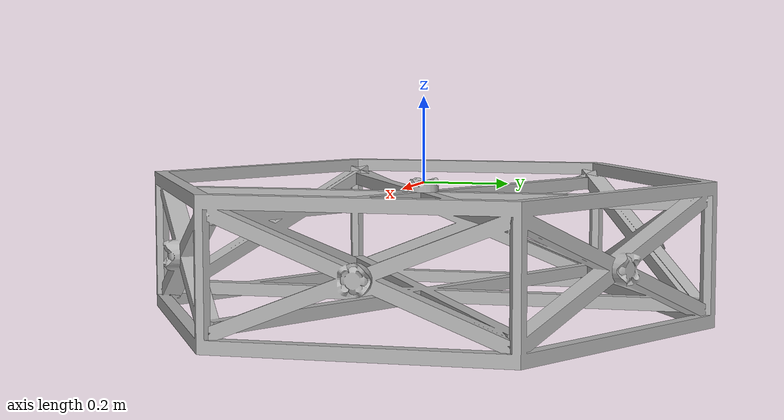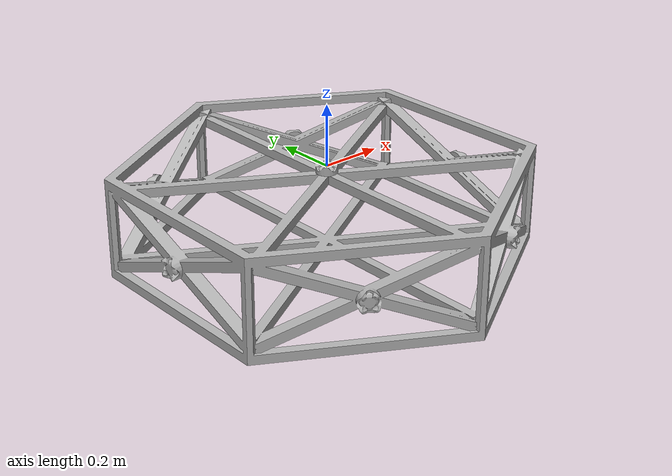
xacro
<?xml version="1.0" ?>
<robot name="srs_modules" xmlns:xacro="http://www.ros.org/wiki/xacro">

<xacro:include filename="$(find srs_modules_description)/urdf/materials.xacro" />
<xacro:include filename="$(find srs_modules_description)/urdf/srs_modules.trans" />
<xacro:include filename="$(find srs_modules_description)/urdf/srs_modules.gazebo" />
<link name="base_link">
  <inertial>
    <origin xyz="1.4261363804378048e-07 1.044383743640896e-12 -0.15064993174648186" rpy="0 0 0"/>
    <mass value="1.0"/>
    <inertia ixx="0.0" iyy="0.0" izz="0.0" ixy="0.0" iyz="0.0" ixz="0"/>
  </inertial>
  <visual>
    <origin xyz="0 0 0" rpy="0 0 0"/>
    <geometry>
      <mesh filename="package://srs_modules_description/meshes/base_link.stl" scale="0.001 0.001 0.001"/>
    </geometry>
    <material name="silver"/>
  </visual>
  <collision>
    <origin xyz="0 0 0" rpy="0 0 0"/>
    <geometry>
      <mesh filename="package://srs_modules_description/meshes/base_link.stl" scale="0.001 0.001 0.001"/>
    </geometry>
  </collision>
</link>

</robot>

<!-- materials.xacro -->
<robot name="srs_modules" xmlns:xacro="http://www.ros.org/wiki/xacro" >

<material name="silver">
  <color rgba="0.700 0.700 0.700 1.000"/>
</material>

</robot>

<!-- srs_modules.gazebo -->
<robot name="srs_modules" xmlns:xacro="http://www.ros.org/wiki/xacro" >

<xacro:property name="body_color" value="Gazebo/Silver" />

<gazebo>
  <plugin name="control" filename="libgazebo_ros_control.so"/>
</gazebo>
<gazebo reference="base_link">
  <material>${body_color}</material>
  <mu1>0.2</mu1>
  <mu2>0.2</mu2>
  <selfCollide>true</selfCollide>
  <gravity>true</gravity>
</gazebo>

</robot>
